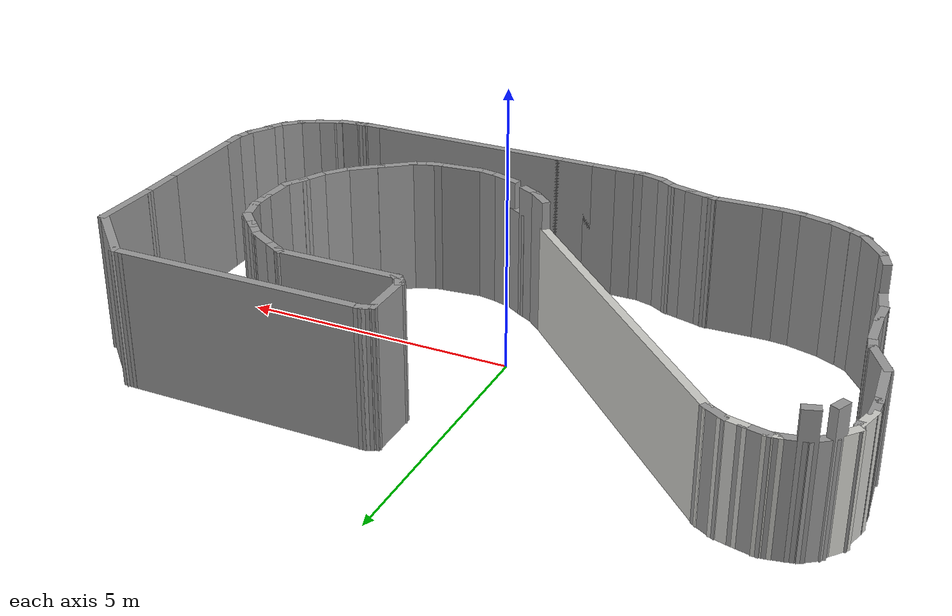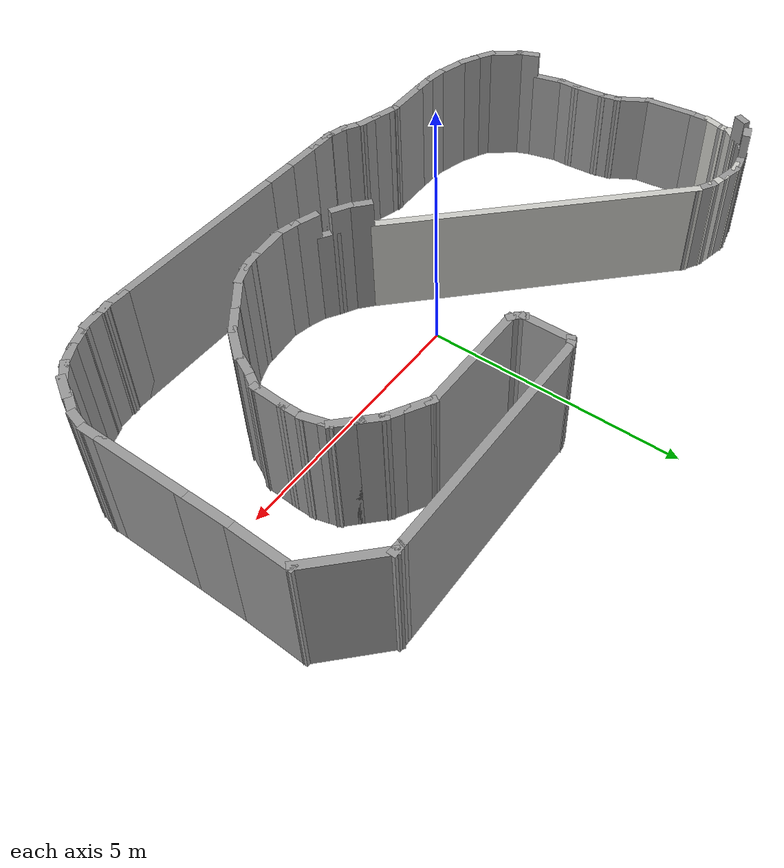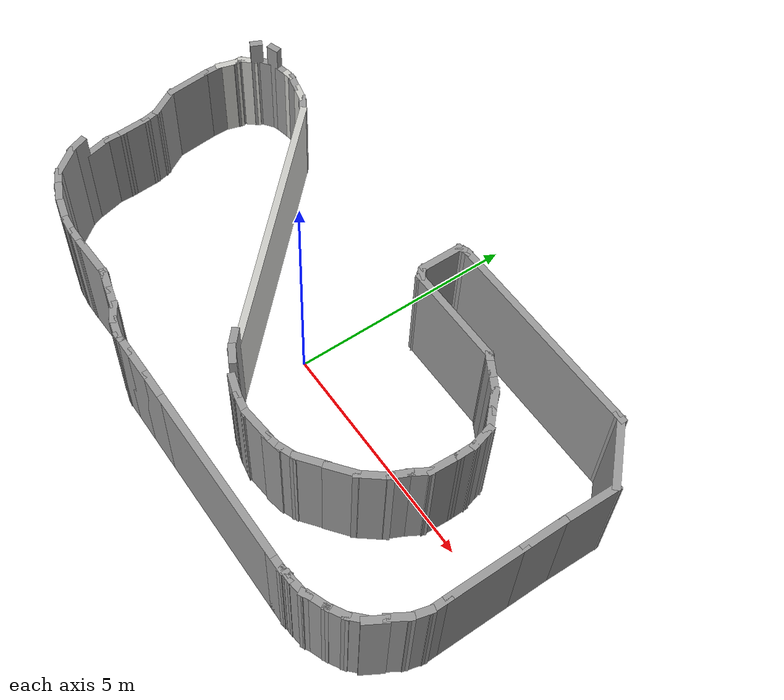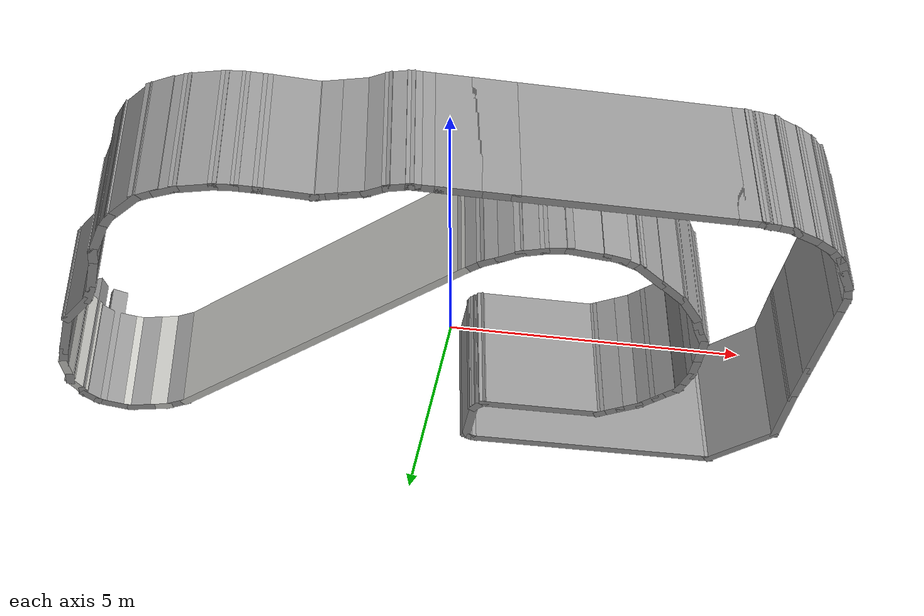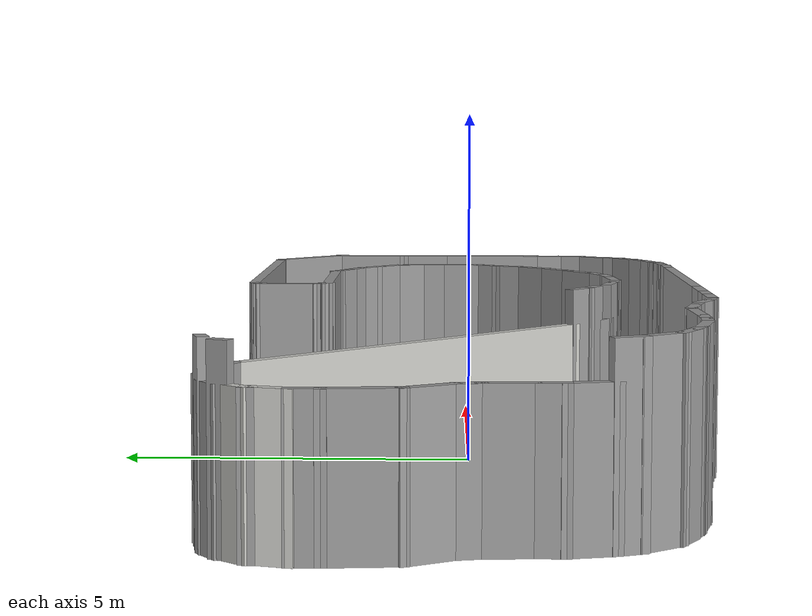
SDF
<?xml version='1.0'?>
<sdf version='1.7'>
  <model name='world_making.world'>
    <pose>-0.039169 -0.055881 0 0 -0 0</pose>
    <link name='Wall_0'>
      <collision name='Wall_0_Collision'>
        <geometry>
          <box>
            <size>1.06315 0.15 2</size>
          </box>
        </geometry>
        <pose>0 0 1 0 -0 0</pose>
      </collision>
      <visual name='Wall_0_Visual'>
        <pose>0 0 1 0 -0 0</pose>
        <geometry>
          <box>
            <size>1.06315 0.15 2</size>
          </box>
        </geometry>
        <material>
          <script>
            <uri>file://media/materials/scripts/gazebo.material</uri>
            <name>Gazebo/Grey</name>
          </script>
          <ambient>1 1 1 1</ambient>
        </material>
        <meta>
          <layer>0</layer>
        </meta>
      </visual>
      <pose>-6.37433 1.31238 0 0 -0 -1.47538</pose>
    </link>
    <link name='Wall_1'>
      <collision name='Wall_1_Collision'>
        <geometry>
          <box>
            <size>0.798482 0.15 2</size>
          </box>
        </geometry>
        <pose>0 0 1 0 -0 0</pose>
      </collision>
      <visual name='Wall_1_Visual'>
        <pose>0 0 1 0 -0 0</pose>
        <geometry>
          <box>
            <size>0.798482 0.15 2</size>
          </box>
        </geometry>
        <material>
          <script>
            <uri>file://media/materials/scripts/gazebo.material</uri>
            <name>Gazebo/Grey</name>
          </script>
          <ambient>1 1 1 1</ambient>
        </material>
        <meta>
          <layer>0</layer>
        </meta>
      </visual>
      <pose>-6.17733 0.577881 0 0 -0 -1.04228</pose>
    </link>
    <link name='Wall_10'>
      <collision name='Wall_10_Collision'>
        <geometry>
          <box>
            <size>0.451537 0.15 2.5</size>
          </box>
        </geometry>
        <pose>0 0 1.25 0 -0 0</pose>
      </collision>
      <visual name='Wall_10_Visual'>
        <pose>0 0 1.25 0 -0 0</pose>
        <geometry>
          <box>
            <size>0.451537 0.15 2.5</size>
          </box>
        </geometry>
        <material>
          <script>
            <uri>file://media/materials/scripts/gazebo.material</uri>
            <name>Gazebo/Grey</name>
          </script>
          <ambient>1 1 1 1</ambient>
        </material>
        <meta>
          <layer>0</layer>
        </meta>
      </visual>
      <pose>-4.80802 -2.57298 0 0 -0 -0.446701</pose>
    </link>
    <link name='Wall_11'>
      <collision name='Wall_11_Collision'>
        <geometry>
          <box>
            <size>0.75 0.15 2.5</size>
          </box>
        </geometry>
        <pose>0 0 1.25 0 -0 0</pose>
      </collision>
      <visual name='Wall_11_Visual'>
        <pose>0 0 1.25 0 -0 0</pose>
        <geometry>
          <box>
            <size>0.75 0.15 2.5</size>
          </box>
        </geometry>
        <material>
          <script>
            <uri>file://media/materials/scripts/gazebo.material</uri>
            <name>Gazebo/Grey</name>
          </script>
          <ambient>1 1 1 1</ambient>
        </material>
        <meta>
          <layer>0</layer>
        </meta>
      </visual>
      <pose>-4.38227 -2.71576 0 0 -0 -0.261799</pose>
    </link>
    <link name='Wall_12'>
      <collision name='Wall_12_Collision'>
        <geometry>
          <box>
            <size>0.471027 0.15 2.5</size>
          </box>
        </geometry>
        <pose>0 0 1.25 0 -0 0</pose>
      </collision>
      <visual name='Wall_12_Visual'>
        <pose>0 0 1.25 0 -0 0</pose>
        <geometry>
          <box>
            <size>0.471027 0.15 2.5</size>
          </box>
        </geometry>
        <material>
          <script>
            <uri>file://media/materials/scripts/gazebo.material</uri>
            <name>Gazebo/Grey</name>
          </script>
          <ambient>1 1 1 1</ambient>
        </material>
        <meta>
          <layer>0</layer>
        </meta>
      </visual>
      <pose>-3.9327 -2.80861 0 0 -0 -0.094893</pose>
    </link>
    <link name='Wall_13'>
      <collision name='Wall_13_Collision'>
        <geometry>
          <box>
            <size>0.5 0.15 2.5</size>
          </box>
        </geometry>
        <pose>0 0 1.25 0 -0 0</pose>
      </collision>
      <visual name='Wall_13_Visual'>
        <pose>0 0 1.25 0 -0 0</pose>
        <geometry>
          <box>
            <size>0.5 0.15 2.5</size>
          </box>
        </geometry>
        <material>
          <script>
            <uri>file://media/materials/scripts/gazebo.material</uri>
            <name>Gazebo/Grey</name>
          </script>
          <ambient>1 1 1 1</ambient>
        </material>
        <meta>
          <layer>0</layer>
        </meta>
      </visual>
      <pose>-3.5827 -2.82382 0 0 -0 0</pose>
    </link>
    <link name='Wall_14'>
      <collision name='Wall_14_Collision'>
        <geometry>
          <box>
            <size>1.03094 0.15 2.5</size>
          </box>
        </geometry>
        <pose>0 0 1.25 0 -0 0</pose>
      </collision>
      <visual name='Wall_14_Visual'>
        <pose>0 0 1.25 0 -0 0</pose>
        <geometry>
          <box>
            <size>1.03094 0.15 2.5</size>
          </box>
        </geometry>
        <material>
          <script>
            <uri>file://media/materials/scripts/gazebo.material</uri>
            <name>Gazebo/Grey</name>
          </script>
          <ambient>1 1 1 1</ambient>
        </material>
        <meta>
          <layer>0</layer>
        </meta>
      </visual>
      <pose>-2.9827 -2.80861 0 0 -0 0.034535</pose>
    </link>
    <link name='Wall_15'>
      <collision name='Wall_15_Collision'>
        <geometry>
          <box>
            <size>0.15 0.15 2.5</size>
          </box>
        </geometry>
        <pose>0 0 1.25 0 -0 0</pose>
      </collision>
      <visual name='Wall_15_Visual'>
        <pose>0 0 1.25 0 -0 0</pose>
        <geometry>
          <box>
            <size>0.15 0.15 2.5</size>
          </box>
        </geometry>
        <material>
          <script>
            <uri>file://media/materials/scripts/gazebo.material</uri>
            <name>Gazebo/Grey</name>
          </script>
          <ambient>1 1 1 1</ambient>
        </material>
        <meta>
          <layer>0</layer>
        </meta>
      </visual>
      <pose>-2.54249 -2.7934 0 0 -0 0</pose>
    </link>
    <link name='Wall_16'>
      <collision name='Wall_16_Collision'>
        <geometry>
          <box>
            <size>0.25 0.15 2.5</size>
          </box>
        </geometry>
        <pose>0 0 1.25 0 -0 0</pose>
      </collision>
      <visual name='Wall_16_Visual'>
        <pose>0 0 1.25 0 -0 0</pose>
        <geometry>
          <box>
            <size>0.25 0.15 2.5</size>
          </box>
        </geometry>
        <material>
          <script>
            <uri>file://media/materials/scripts/gazebo.material</uri>
            <name>Gazebo/Grey</name>
          </script>
          <ambient>1 1 1 1</ambient>
        </material>
        <meta>
          <layer>0</layer>
        </meta>
      </visual>
      <pose>-2.49419 -2.80634 0 0 -0 -0.261799</pose>
    </link>
    <link name='Wall_17'>
      <collision name='Wall_17_Collision'>
        <geometry>
          <box>
            <size>0.5 0.15 2.5</size>
          </box>
        </geometry>
        <pose>0 0 1.25 0 -0 0</pose>
      </collision>
      <visual name='Wall_17_Visual'>
        <pose>0 0 1.25 0 -0 0</pose>
        <geometry>
          <box>
            <size>0.5 0.15 2.5</size>
          </box>
        </geometry>
        <material>
          <script>
            <uri>file://media/materials/scripts/gazebo.material</uri>
            <name>Gazebo/Grey</name>
          </script>
          <ambient>1 1 1 1</ambient>
        </material>
        <meta>
          <layer>0</layer>
        </meta>
      </visual>
      <pose>-2.27686 -2.86458 0 0 -0 -0.261799</pose>
    </link>
    <link name='Wall_18'>
      <collision name='Wall_18_Collision'>
        <geometry>
          <box>
            <size>0.5 0.15 2.5</size>
          </box>
        </geometry>
        <pose>0 0 1.25 0 -0 0</pose>
      </collision>
      <visual name='Wall_18_Visual'>
        <pose>0 0 1.25 0 -0 0</pose>
        <geometry>
          <box>
            <size>0.5 0.15 2.5</size>
          </box>
        </geometry>
        <material>
          <script>
            <uri>file://media/materials/scripts/gazebo.material</uri>
            <name>Gazebo/Grey</name>
          </script>
          <ambient>1 1 1 1</ambient>
        </material>
        <meta>
          <layer>0</layer>
        </meta>
      </visual>
      <pose>-1.93878 -2.95517 0 0 -0 -0.261799</pose>
    </link>
    <link name='Wall_19'>
      <collision name='Wall_19_Collision'>
        <geometry>
          <box>
            <size>0.5 0.15 2.5</size>
          </box>
        </geometry>
        <pose>0 0 1.25 0 -0 0</pose>
      </collision>
      <visual name='Wall_19_Visual'>
        <pose>0 0 1.25 0 -0 0</pose>
        <geometry>
          <box>
            <size>0.5 0.15 2.5</size>
          </box>
        </geometry>
        <material>
          <script>
            <uri>file://media/materials/scripts/gazebo.material</uri>
            <name>Gazebo/Grey</name>
          </script>
          <ambient>1 1 1 1</ambient>
        </material>
        <meta>
          <layer>0</layer>
        </meta>
      </visual>
      <pose>-1.61819 -3.08796 0 0 -0 -0.523599</pose>
    </link>
    <link name='Wall_2'>
      <collision name='Wall_2_Collision'>
        <geometry>
          <box>
            <size>0.465854 0.15 2</size>
          </box>
        </geometry>
        <pose>0 0 1 0 -0 0</pose>
      </collision>
      <visual name='Wall_2_Visual'>
        <pose>0 0 1 0 -0 0</pose>
        <geometry>
          <box>
            <size>0.465854 0.15 2</size>
          </box>
        </geometry>
        <material>
          <script>
            <uri>file://media/materials/scripts/gazebo.material</uri>
            <name>Gazebo/Grey</name>
          </script>
          <ambient>1 1 1 1</ambient>
        </material>
        <meta>
          <layer>0</layer>
        </meta>
      </visual>
      <pose>-5.97883 0.143881 0 0 -0 -1.34732</pose>
    </link>
    <link name='Wall_20'>
      <collision name='Wall_20_Collision'>
        <geometry>
          <box>
            <size>0.5 0.15 2.5</size>
          </box>
        </geometry>
        <pose>0 0 1.25 0 -0 0</pose>
      </collision>
      <visual name='Wall_20_Visual'>
        <pose>0 0 1.25 0 -0 0</pose>
        <geometry>
          <box>
            <size>0.5 0.15 2.5</size>
          </box>
        </geometry>
        <material>
          <script>
            <uri>file://media/materials/scripts/gazebo.material</uri>
            <name>Gazebo/Grey</name>
          </script>
          <ambient>1 1 1 1</ambient>
        </material>
        <meta>
          <layer>0</layer>
        </meta>
      </visual>
      <pose>-1.2976 -3.22075 0 0 -0 -0.261799</pose>
    </link>
    <link name='Wall_21'>
      <collision name='Wall_21_Collision'>
        <geometry>
          <box>
            <size>0.25 0.15 2.5</size>
          </box>
        </geometry>
        <pose>0 0 1.25 0 -0 0</pose>
      </collision>
      <visual name='Wall_21_Visual'>
        <pose>0 0 1.25 0 -0 0</pose>
        <geometry>
          <box>
            <size>0.25 0.15 2.5</size>
          </box>
        </geometry>
        <material>
          <script>
            <uri>file://media/materials/scripts/gazebo.material</uri>
            <name>Gazebo/Grey</name>
          </script>
          <ambient>1 1 1 1</ambient>
        </material>
        <meta>
          <layer>0</layer>
        </meta>
      </visual>
      <pose>-1.07856 -3.26605 0 0 -0 0</pose>
    </link>
    <link name='Wall_22'>
      <collision name='Wall_22_Collision'>
        <geometry>
          <box>
            <size>0.5 0.15 2.5</size>
          </box>
        </geometry>
        <pose>0 0 1.25 0 -0 0</pose>
      </collision>
      <visual name='Wall_22_Visual'>
        <pose>0 0 1.25 0 -0 0</pose>
        <geometry>
          <box>
            <size>0.5 0.15 2.5</size>
          </box>
        </geometry>
        <material>
          <script>
            <uri>file://media/materials/scripts/gazebo.material</uri>
            <name>Gazebo/Grey</name>
          </script>
          <ambient>1 1 1 1</ambient>
        </material>
        <meta>
          <layer>0</layer>
        </meta>
      </visual>
      <pose>-0.853564 -3.26605 0 0 -0 0</pose>
    </link>
    <link name='Wall_23'>
      <collision name='Wall_23_Collision'>
        <geometry>
          <box>
            <size>0.75 0.15 2.5</size>
          </box>
        </geometry>
        <pose>0 0 1.25 0 -0 0</pose>
      </collision>
      <visual name='Wall_23_Visual'>
        <pose>0 0 1.25 0 -0 0</pose>
        <geometry>
          <box>
            <size>0.75 0.15 2.5</size>
          </box>
        </geometry>
        <material>
          <script>
            <uri>file://media/materials/scripts/gazebo.material</uri>
            <name>Gazebo/Grey</name>
          </script>
          <ambient>1 1 1 1</ambient>
        </material>
        <meta>
          <layer>0</layer>
        </meta>
      </visual>
      <pose>-0.378564 -3.26605 0 0 -0 0</pose>
    </link>
    <link name='Wall_24'>
      <collision name='Wall_24_Collision'>
        <geometry>
          <box>
            <size>0.75 0.15 2.5</size>
          </box>
        </geometry>
        <pose>0 0 1.25 0 -0 0</pose>
      </collision>
      <visual name='Wall_24_Visual'>
        <pose>0 0 1.25 0 -0 0</pose>
        <geometry>
          <box>
            <size>0.75 0.15 2.5</size>
          </box>
        </geometry>
        <material>
          <script>
            <uri>file://media/materials/scripts/gazebo.material</uri>
            <name>Gazebo/Grey</name>
          </script>
          <ambient>1 1 1 1</ambient>
        </material>
        <meta>
          <layer>0</layer>
        </meta>
      </visual>
      <pose>0.221436 -3.26605 0 0 -0 0</pose>
    </link>
    <link name='Wall_25'>
      <collision name='Wall_25_Collision'>
        <geometry>
          <box>
            <size>3.75 0.15 2.5</size>
          </box>
        </geometry>
        <pose>0 0 1.25 0 -0 0</pose>
      </collision>
      <visual name='Wall_25_Visual'>
        <pose>0 0 1.25 0 -0 0</pose>
        <geometry>
          <box>
            <size>3.75 0.15 2.5</size>
          </box>
        </geometry>
        <material>
          <script>
            <uri>file://media/materials/scripts/gazebo.material</uri>
            <name>Gazebo/Grey</name>
          </script>
          <ambient>1 1 1 1</ambient>
        </material>
        <meta>
          <layer>0</layer>
        </meta>
      </visual>
      <pose>2.32144 -3.26605 0 0 -0 0</pose>
    </link>
    <link name='Wall_26'>
      <collision name='Wall_26_Collision'>
        <geometry>
          <box>
            <size>0.5 0.15 2.5</size>
          </box>
        </geometry>
        <pose>0 0 1.25 0 -0 0</pose>
      </collision>
      <visual name='Wall_26_Visual'>
        <pose>0 0 1.25 0 -0 0</pose>
        <geometry>
          <box>
            <size>0.5 0.15 2.5</size>
          </box>
        </geometry>
        <material>
          <script>
            <uri>file://media/materials/scripts/gazebo.material</uri>
            <name>Gazebo/Grey</name>
          </script>
          <ambient>1 1 1 1</ambient>
        </material>
        <meta>
          <layer>0</layer>
        </meta>
      </visual>
      <pose>4.29644 -3.26605 0 0 -0 0</pose>
    </link>
    <link name='Wall_27'>
      <collision name='Wall_27_Collision'>
        <geometry>
          <box>
            <size>0.25 0.15 2.5</size>
          </box>
        </geometry>
        <pose>0 0 1.25 0 -0 0</pose>
      </collision>
      <visual name='Wall_27_Visual'>
        <pose>0 0 1.25 0 -0 0</pose>
        <geometry>
          <box>
            <size>0.25 0.15 2.5</size>
          </box>
        </geometry>
        <material>
          <script>
            <uri>file://media/materials/scripts/gazebo.material</uri>
            <name>Gazebo/Grey</name>
          </script>
          <ambient>1 1 1 1</ambient>
        </material>
        <meta>
          <layer>0</layer>
        </meta>
      </visual>
      <pose>4.51973 -3.25311 0 0 -0 0.261799</pose>
    </link>
    <link name='Wall_28'>
      <collision name='Wall_28_Collision'>
        <geometry>
          <box>
            <size>0.25 0.15 2.5</size>
          </box>
        </geometry>
        <pose>0 0 1.25 0 -0 0</pose>
      </collision>
      <visual name='Wall_28_Visual'>
        <pose>0 0 1.25 0 -0 0</pose>
        <geometry>
          <box>
            <size>0.25 0.15 2.5</size>
          </box>
        </geometry>
        <material>
          <script>
            <uri>file://media/materials/scripts/gazebo.material</uri>
            <name>Gazebo/Grey</name>
          </script>
          <ambient>1 1 1 1</ambient>
        </material>
        <meta>
          <layer>0</layer>
        </meta>
      </visual>
      <pose>4.61803 -3.24016 0 0 -0 0</pose>
    </link>
    <link name='Wall_29'>
      <collision name='Wall_29_Collision'>
        <geometry>
          <box>
            <size>0.462851 0.15 2.5</size>
          </box>
        </geometry>
        <pose>0 0 1.25 0 -0 0</pose>
      </collision>
      <visual name='Wall_29_Visual'>
        <pose>0 0 1.25 0 -0 0</pose>
        <geometry>
          <box>
            <size>0.462851 0.15 2.5</size>
          </box>
        </geometry>
        <material>
          <script>
            <uri>file://media/materials/scripts/gazebo.material</uri>
            <name>Gazebo/Grey</name>
          </script>
          <ambient>1 1 1 1</ambient>
        </material>
        <meta>
          <layer>0</layer>
        </meta>
      </visual>
      <pose>4.82319 -3.22033 0 0 -0 0.12716</pose>
    </link>
    <link name='Wall_3'>
      <collision name='Wall_3_Collision'>
        <geometry>
          <box>
            <size>0.751458 0.15 2</size>
          </box>
        </geometry>
        <pose>0 0 1 0 -0 0</pose>
      </collision>
      <visual name='Wall_3_Visual'>
        <pose>0 0 1 0 -0 0</pose>
        <geometry>
          <box>
            <size>0.751458 0.15 2</size>
          </box>
        </geometry>
        <material>
          <script>
            <uri>file://media/materials/scripts/gazebo.material</uri>
            <name>Gazebo/Grey</name>
          </script>
          <ambient>1 1 1 1</ambient>
        </material>
        <meta>
          <layer>0</layer>
        </meta>
      </visual>
      <pose>-5.92383 -0.310119 0 0 -0 -1.50423</pose>
    </link>
    <link name='Wall_30'>
      <collision name='Wall_30_Collision'>
        <geometry>
          <box>
            <size>0.25 0.15 2.5</size>
          </box>
        </geometry>
        <pose>0 0 1.25 0 -0 0</pose>
      </collision>
      <visual name='Wall_30_Visual'>
        <pose>0 0 1.25 0 -0 0</pose>
        <geometry>
          <box>
            <size>0.25 0.15 2.5</size>
          </box>
        </geometry>
        <material>
          <script>
            <uri>file://media/materials/scripts/gazebo.material</uri>
            <name>Gazebo/Grey</name>
          </script>
          <ambient>1 1 1 1</ambient>
        </material>
        <meta>
          <layer>0</layer>
        </meta>
      </visual>
      <pose>5.03488 -3.17549 0 0 -0 0.523599</pose>
    </link>
    <link name='Wall_31'>
      <collision name='Wall_31_Collision'>
        <geometry>
          <box>
            <size>0.518529 0.15 2.5</size>
          </box>
        </geometry>
        <pose>0 0 1.25 0 -0 0</pose>
      </collision>
      <visual name='Wall_31_Visual'>
        <pose>0 0 1.25 0 -0 0</pose>
        <geometry>
          <box>
            <size>0.518529 0.15 2.5</size>
          </box>
        </geometry>
        <material>
          <script>
            <uri>file://media/materials/scripts/gazebo.material</uri>
            <name>Gazebo/Grey</name>
          </script>
          <ambient>1 1 1 1</ambient>
        </material>
        <meta>
          <layer>0</layer>
        </meta>
      </visual>
      <pose>5.23635 -3.08283 0 0 -0 0.376</pose>
    </link>
    <link name='Wall_32'>
      <collision name='Wall_32_Collision'>
        <geometry>
          <box>
            <size>0.5 0.15 2.5</size>
          </box>
        </geometry>
        <pose>0 0 1.25 0 -0 0</pose>
      </collision>
      <visual name='Wall_32_Visual'>
        <pose>0 0 1.25 0 -0 0</pose>
        <geometry>
          <box>
            <size>0.5 0.15 2.5</size>
          </box>
        </geometry>
        <material>
          <script>
            <uri>file://media/materials/scripts/gazebo.material</uri>
            <name>Gazebo/Grey</name>
          </script>
          <ambient>1 1 1 1</ambient>
        </material>
        <meta>
          <layer>0</layer>
        </meta>
      </visual>
      <pose>5.55929 -2.92766 0 0 -0 0.523599</pose>
    </link>
    <link name='Wall_33'>
      <collision name='Wall_33_Collision'>
        <geometry>
          <box>
            <size>0.461814 0.15 2.5</size>
          </box>
        </geometry>
        <pose>0 0 1.25 0 -0 0</pose>
      </collision>
      <visual name='Wall_33_Visual'>
        <pose>0 0 1.25 0 -0 0</pose>
        <geometry>
          <box>
            <size>0.461814 0.15 2.5</size>
          </box>
        </geometry>
        <material>
          <script>
            <uri>file://media/materials/scripts/gazebo.material</uri>
            <name>Gazebo/Grey</name>
          </script>
          <ambient>1 1 1 1</ambient>
        </material>
        <meta>
          <layer>0</layer>
        </meta>
      </visual>
      <pose>5.82137 -2.7302 0 0 -0 0.782894</pose>
    </link>
    <link name='Wall_34'>
      <collision name='Wall_34_Collision'>
        <geometry>
          <box>
            <size>0.5 0.15 2.5</size>
          </box>
        </geometry>
        <pose>0 0 1.25 0 -0 0</pose>
      </collision>
      <visual name='Wall_34_Visual'>
        <pose>0 0 1.25 0 -0 0</pose>
        <geometry>
          <box>
            <size>0.5 0.15 2.5</size>
          </box>
        </geometry>
        <material>
          <script>
            <uri>file://media/materials/scripts/gazebo.material</uri>
            <name>Gazebo/Grey</name>
          </script>
          <ambient>1 1 1 1</ambient>
        </material>
        <meta>
          <layer>0</layer>
        </meta>
      </visual>
      <pose>6.03261 -2.49513 0 0 -0 1.0472</pose>
    </link>
    <link name='Wall_35'>
      <collision name='Wall_35_Collision'>
        <geometry>
          <box>
            <size>0.537195 0.15 2.5</size>
          </box>
        </geometry>
        <pose>0 0 1.25 0 -0 0</pose>
      </collision>
      <visual name='Wall_35_Visual'>
        <pose>0 0 1.25 0 -0 0</pose>
        <geometry>
          <box>
            <size>0.537195 0.15 2.5</size>
          </box>
        </geometry>
        <material>
          <script>
            <uri>file://media/materials/scripts/gazebo.material</uri>
            <name>Gazebo/Grey</name>
          </script>
          <ambient>1 1 1 1</ambient>
        </material>
        <meta>
          <layer>0</layer>
        </meta>
      </visual>
      <pose>6.20761 -2.15179 0 0 -0 1.02362</pose>
    </link>
    <link name='Wall_36'>
      <collision name='Wall_36_Collision'>
        <geometry>
          <box>
            <size>0.5 0.15 2.5</size>
          </box>
        </geometry>
        <pose>0 0 1.25 0 -0 0</pose>
      </collision>
      <visual name='Wall_36_Visual'>
        <pose>0 0 1.25 0 -0 0</pose>
        <geometry>
          <box>
            <size>0.5 0.15 2.5</size>
          </box>
        </geometry>
        <material>
          <script>
            <uri>file://media/materials/scripts/gazebo.material</uri>
            <name>Gazebo/Grey</name>
          </script>
          <ambient>1 1 1 1</ambient>
        </material>
        <meta>
          <layer>0</layer>
        </meta>
      </visual>
      <pose>6.35363 -1.81742 0 0 -0 1.309</pose>
    </link>
    <link name='Wall_37'>
      <collision name='Wall_37_Collision'>
        <geometry>
          <box>
            <size>0.5 0.15 2.5</size>
          </box>
        </geometry>
        <pose>0 0 1.25 0 -0 0</pose>
      </collision>
      <visual name='Wall_37_Visual'>
        <pose>0 0 1.25 0 -0 0</pose>
        <geometry>
          <box>
            <size>0.5 0.15 2.5</size>
          </box>
        </geometry>
        <material>
          <script>
            <uri>file://media/materials/scripts/gazebo.material</uri>
            <name>Gazebo/Grey</name>
          </script>
          <ambient>1 1 1 1</ambient>
        </material>
        <meta>
          <layer>0</layer>
        </meta>
      </visual>
      <pose>6.39892 -1.47338 0 0 -0 1.5708</pose>
    </link>
    <link name='Wall_38'>
      <collision name='Wall_38_Collision'>
        <geometry>
          <box>
            <size>1.75 0.15 2.5</size>
          </box>
        </geometry>
        <pose>0 0 1.25 0 -0 0</pose>
      </collision>
      <visual name='Wall_38_Visual'>
        <pose>0 0 1.25 0 -0 0</pose>
        <geometry>
          <box>
            <size>1.75 0.15 2.5</size>
          </box>
        </geometry>
        <material>
          <script>
            <uri>file://media/materials/scripts/gazebo.material</uri>
            <name>Gazebo/Grey</name>
          </script>
          <ambient>1 1 1 1</ambient>
        </material>
        <meta>
          <layer>0</layer>
        </meta>
      </visual>
      <pose>6.39892 -0.498385 0 0 -0 1.5708</pose>
    </link>
    <link name='Wall_39'>
      <collision name='Wall_39_Collision'>
        <geometry>
          <box>
            <size>1 0.15 2.5</size>
          </box>
        </geometry>
        <pose>0 0 1.25 0 -0 0</pose>
      </collision>
      <visual name='Wall_39_Visual'>
        <pose>0 0 1.25 0 -0 0</pose>
        <geometry>
          <box>
            <size>1 0.15 2.5</size>
          </box>
        </geometry>
        <material>
          <script>
            <uri>file://media/materials/scripts/gazebo.material</uri>
            <name>Gazebo/Grey</name>
          </script>
          <ambient>1 1 1 1</ambient>
        </material>
        <meta>
          <layer>0</layer>
        </meta>
      </visual>
      <pose>6.39892 0.726615 0 0 -0 1.5708</pose>
    </link>
    <link name='Wall_4'>
      <collision name='Wall_4_Collision'>
        <geometry>
          <box>
            <size>0.510127 0.15 2</size>
          </box>
        </geometry>
        <pose>0 0 1 0 -0 0</pose>
      </collision>
      <visual name='Wall_4_Visual'>
        <pose>0 0 1 0 -0 0</pose>
        <geometry>
          <box>
            <size>0.510127 0.15 2</size>
          </box>
        </geometry>
        <material>
          <script>
            <uri>file://media/materials/scripts/gazebo.material</uri>
            <name>Gazebo/Grey</name>
          </script>
          <ambient>1 1 1 1</ambient>
        </material>
        <meta>
          <layer>0</layer>
        </meta>
      </visual>
      <pose>-5.90383 -0.790119 0 0 -0 -1.5708</pose>
    </link>
    <link name='Wall_40'>
      <collision name='Wall_40_Collision'>
        <geometry>
          <box>
            <size>1.29573 0.15 2.5</size>
          </box>
        </geometry>
        <pose>0 0 1.25 0 -0 0</pose>
      </collision>
      <visual name='Wall_40_Visual'>
        <pose>0 0 1.25 0 -0 0</pose>
        <geometry>
          <box>
            <size>1.29573 0.15 2.5</size>
          </box>
        </geometry>
        <material>
          <script>
            <uri>file://media/materials/scripts/gazebo.material</uri>
            <name>Gazebo/Grey</name>
          </script>
          <ambient>1 1 1 1</ambient>
        </material>
        <meta>
          <layer>0</layer>
        </meta>
      </visual>
      <pose>6.41413 1.72443 0 0 -0 1.54425</pose>
    </link>
    <link name='Wall_41'>
      <collision name='Wall_41_Collision'>
        <geometry>
          <box>
            <size>1.5 0.15 2.5</size>
          </box>
        </geometry>
        <pose>0 0 1.25 0 -0 0</pose>
      </collision>
      <visual name='Wall_41_Visual'>
        <pose>0 0 1.25 0 -0 0</pose>
        <geometry>
          <box>
            <size>1.5 0.15 2.5</size>
          </box>
        </geometry>
        <material>
          <script>
            <uri>file://media/materials/scripts/gazebo.material</uri>
            <name>Gazebo/Grey</name>
          </script>
          <ambient>1 1 1 1</ambient>
        </material>
        <meta>
          <layer>0</layer>
        </meta>
      </visual>
      <pose>5.93684 2.77454 0 0 -0 2.35619</pose>
    </link>
    <link name='Wall_42'>
      <collision name='Wall_42_Collision'>
        <geometry>
          <box>
            <size>0.267102 0.15 2.5</size>
          </box>
        </geometry>
        <pose>0 0 1.25 0 -0 0</pose>
      </collision>
      <visual name='Wall_42_Visual'>
        <pose>0 0 1.25 0 -0 0</pose>
        <geometry>
          <box>
            <size>0.267102 0.15 2.5</size>
          </box>
        </geometry>
        <material>
          <script>
            <uri>file://media/materials/scripts/gazebo.material</uri>
            <name>Gazebo/Grey</name>
          </script>
          <ambient>1 1 1 1</ambient>
        </material>
        <meta>
          <layer>0</layer>
        </meta>
      </visual>
      <pose>5.41624 3.25402 0 0 -0 3.10423</pose>
    </link>
    <link name='Wall_43'>
      <collision name='Wall_43_Collision'>
        <geometry>
          <box>
            <size>4.5 0.15 2.5</size>
          </box>
        </geometry>
        <pose>0 0 1.25 0 -0 0</pose>
      </collision>
      <visual name='Wall_43_Visual'>
        <pose>0 0 1.25 0 -0 0</pose>
        <geometry>
          <box>
            <size>4.5 0.15 2.5</size>
          </box>
        </geometry>
        <material>
          <script>
            <uri>file://media/materials/scripts/gazebo.material</uri>
            <name>Gazebo/Grey</name>
          </script>
          <ambient>1 1 1 1</ambient>
        </material>
        <meta>
          <layer>0</layer>
        </meta>
      </visual>
      <pose>3.18273 3.25621 0 0 -0 3.14159</pose>
    </link>
    <link name='Wall_44'>
      <collision name='Wall_44_Collision'>
        <geometry>
          <box>
            <size>0.25 0.15 2.5</size>
          </box>
        </geometry>
        <pose>0 0 1.25 0 -0 0</pose>
      </collision>
      <visual name='Wall_44_Visual'>
        <pose>0 0 1.25 0 -0 0</pose>
        <geometry>
          <box>
            <size>0.25 0.15 2.5</size>
          </box>
        </geometry>
        <material>
          <script>
            <uri>file://media/materials/scripts/gazebo.material</uri>
            <name>Gazebo/Grey</name>
          </script>
          <ambient>1 1 1 1</ambient>
        </material>
        <meta>
          <layer>0</layer>
        </meta>
      </visual>
      <pose>0.95943 3.24327 0 0 -0 -2.87979</pose>
    </link>
    <link name='Wall_45'>
      <collision name='Wall_45_Collision'>
        <geometry>
          <box>
            <size>0.25 0.15 2.5</size>
          </box>
        </geometry>
        <pose>0 0 1.25 0 -0 0</pose>
      </collision>
      <visual name='Wall_45_Visual'>
        <pose>0 0 1.25 0 -0 0</pose>
        <geometry>
          <box>
            <size>0.25 0.15 2.5</size>
          </box>
        </geometry>
        <material>
          <script>
            <uri>file://media/materials/scripts/gazebo.material</uri>
            <name>Gazebo/Grey</name>
          </script>
          <ambient>1 1 1 1</ambient>
        </material>
        <meta>
          <layer>0</layer>
        </meta>
      </visual>
      <pose>0.867832 3.20533 0 0 -0 -2.61799</pose>
    </link>
    <link name='Wall_46'>
      <collision name='Wall_46_Collision'>
        <geometry>
          <box>
            <size>1 0.15 2.5</size>
          </box>
        </geometry>
        <pose>0 0 1.25 0 -0 0</pose>
      </collision>
      <visual name='Wall_46_Visual'>
        <pose>0 0 1.25 0 -0 0</pose>
        <geometry>
          <box>
            <size>1 0.15 2.5</size>
          </box>
        </geometry>
        <material>
          <script>
            <uri>file://media/materials/scripts/gazebo.material</uri>
            <name>Gazebo/Grey</name>
          </script>
          <ambient>1 1 1 1</ambient>
        </material>
        <meta>
          <layer>0</layer>
        </meta>
      </visual>
      <pose>0.824531 2.75533 0 0 -0 -1.5708</pose>
    </link>
    <link name='Wall_47'>
      <collision name='Wall_47_Collision'>
        <geometry>
          <box>
            <size>0.25 0.15 2.5</size>
          </box>
        </geometry>
        <pose>0 0 1.25 0 -0 0</pose>
      </collision>
      <visual name='Wall_47_Visual'>
        <pose>0 0 1.25 0 -0 0</pose>
        <geometry>
          <box>
            <size>0.25 0.15 2.5</size>
          </box>
        </geometry>
        <material>
          <script>
            <uri>file://media/materials/scripts/gazebo.material</uri>
            <name>Gazebo/Grey</name>
          </script>
          <ambient>1 1 1 1</ambient>
        </material>
        <meta>
          <layer>0</layer>
        </meta>
      </visual>
      <pose>0.849531 2.28703 0 0 -0 -1.0472</pose>
    </link>
    <link name='Wall_48'>
      <collision name='Wall_48_Collision'>
        <geometry>
          <box>
            <size>0.282699 0.15 2.5</size>
          </box>
        </geometry>
        <pose>0 0 1.25 0 -0 0</pose>
      </collision>
      <visual name='Wall_48_Visual'>
        <pose>0 0 1.25 0 -0 0</pose>
        <geometry>
          <box>
            <size>0.282699 0.15 2.5</size>
          </box>
        </geometry>
        <material>
          <script>
            <uri>file://media/materials/scripts/gazebo.material</uri>
            <name>Gazebo/Grey</name>
          </script>
          <ambient>1 1 1 1</ambient>
        </material>
        <meta>
          <layer>0</layer>
        </meta>
      </visual>
      <pose>0.925095 2.20077 0 0 -0 -0.704267</pose>
    </link>
    <link name='Wall_49'>
      <collision name='Wall_49_Collision'>
        <geometry>
          <box>
            <size>2.25 0.15 2.5</size>
          </box>
        </geometry>
        <pose>0 0 1.25 0 -0 0</pose>
      </collision>
      <visual name='Wall_49_Visual'>
        <pose>0 0 1.25 0 -0 0</pose>
        <geometry>
          <box>
            <size>2.25 0.15 2.5</size>
          </box>
        </geometry>
        <material>
          <script>
            <uri>file://media/materials/scripts/gazebo.material</uri>
            <name>Gazebo/Grey</name>
          </script>
          <ambient>1 1 1 1</ambient>
        </material>
        <meta>
          <layer>0</layer>
        </meta>
      </visual>
      <pose>2.01045 2.15781 0 0 -0 0</pose>
    </link>
    <link name='Wall_5'>
      <collision name='Wall_5_Collision'>
        <geometry>
          <box>
            <size>0.746835 0.15 2</size>
          </box>
        </geometry>
        <pose>0 0 1 0 -0 0</pose>
      </collision>
      <visual name='Wall_5_Visual'>
        <pose>0 0 1 0 -0 0</pose>
        <geometry>
          <box>
            <size>0.746835 0.15 2</size>
          </box>
        </geometry>
        <material>
          <script>
            <uri>file://media/materials/scripts/gazebo.material</uri>
            <name>Gazebo/Grey</name>
          </script>
          <ambient>1 1 1 1</ambient>
        </material>
        <meta>
          <layer>0</layer>
        </meta>
      </visual>
      <pose>-5.83283 -1.26012 0 0 -0 -1.33069</pose>
    </link>
    <link name='Wall_50'>
      <collision name='Wall_50_Collision'>
        <geometry>
          <box>
            <size>0.216085 0.15 2.5</size>
          </box>
        </geometry>
        <pose>0 0 1.25 0 -0 0</pose>
      </collision>
      <visual name='Wall_50_Visual'>
        <pose>0 0 1.25 0 -0 0</pose>
        <geometry>
          <box>
            <size>0.216085 0.15 2.5</size>
          </box>
        </geometry>
        <material>
          <script>
            <uri>file://media/materials/scripts/gazebo.material</uri>
            <name>Gazebo/Grey</name>
          </script>
          <ambient>1 1 1 1</ambient>
        </material>
        <meta>
          <layer>0</layer>
        </meta>
      </visual>
      <pose>3.10375 2.14041 0 0 -0 -0.554437</pose>
    </link>
    <link name='Wall_51'>
      <collision name='Wall_51_Collision'>
        <geometry>
          <box>
            <size>0.5 0.15 2.5</size>
          </box>
        </geometry>
        <pose>0 0 1.25 0 -0 0</pose>
      </collision>
      <visual name='Wall_51_Visual'>
        <pose>0 0 1.25 0 -0 0</pose>
        <geometry>
          <box>
            <size>0.5 0.15 2.5</size>
          </box>
        </geometry>
        <material>
          <script>
            <uri>file://media/materials/scripts/gazebo.material</uri>
            <name>Gazebo/Grey</name>
          </script>
          <ambient>1 1 1 1</ambient>
        </material>
        <meta>
          <layer>0</layer>
        </meta>
      </visual>
      <pose>3.2834 2.03551 0 0 -0 -0.523599</pose>
    </link>
    <link name='Wall_52'>
      <collision name='Wall_52_Collision'>
        <geometry>
          <box>
            <size>0.5 0.15 2.5</size>
          </box>
        </geometry>
        <pose>0 0 1.25 0 -0 0</pose>
      </collision>
      <visual name='Wall_52_Visual'>
        <pose>0 0 1.25 0 -0 0</pose>
        <geometry>
          <box>
            <size>0.5 0.15 2.5</size>
          </box>
        </geometry>
        <material>
          <script>
            <uri>file://media/materials/scripts/gazebo.material</uri>
            <name>Gazebo/Grey</name>
          </script>
          <ambient>1 1 1 1</ambient>
        </material>
        <meta>
          <layer>0</layer>
        </meta>
      </visual>
      <pose>3.58651 1.86051 0 0 -0 -0.523599</pose>
    </link>
    <link name='Wall_53'>
      <collision name='Wall_53_Collision'>
        <geometry>
          <box>
            <size>0.5 0.15 2.5</size>
          </box>
        </geometry>
        <pose>0 0 1.25 0 -0 0</pose>
      </collision>
      <visual name='Wall_53_Visual'>
        <pose>0 0 1.25 0 -0 0</pose>
        <geometry>
          <box>
            <size>0.5 0.15 2.5</size>
          </box>
        </geometry>
        <material>
          <script>
            <uri>file://media/materials/scripts/gazebo.material</uri>
            <name>Gazebo/Grey</name>
          </script>
          <ambient>1 1 1 1</ambient>
        </material>
        <meta>
          <layer>0</layer>
        </meta>
      </visual>
      <pose>3.86181 1.64927 0 0 -0 -0.785398</pose>
    </link>
    <link name='Wall_54'>
      <collision name='Wall_54_Collision'>
        <geometry>
          <box>
            <size>0.25 0.15 2.5</size>
          </box>
        </geometry>
        <pose>0 0 1.25 0 -0 0</pose>
      </collision>
      <visual name='Wall_54_Visual'>
        <pose>0 0 1.25 0 -0 0</pose>
        <geometry>
          <box>
            <size>0.25 0.15 2.5</size>
          </box>
        </geometry>
        <material>
          <script>
            <uri>file://media/materials/scripts/gazebo.material</uri>
            <name>Gazebo/Grey</name>
          </script>
          <ambient>1 1 1 1</ambient>
        </material>
        <meta>
          <layer>0</layer>
        </meta>
      </visual>
      <pose>4.0209 1.49017 0 0 -0 -0.785398</pose>
    </link>
    <link name='Wall_55'>
      <collision name='Wall_55_Collision'>
        <geometry>
          <box>
            <size>0.5 0.15 2.5</size>
          </box>
        </geometry>
        <pose>0 0 1.25 0 -0 0</pose>
      </collision>
      <visual name='Wall_55_Visual'>
        <pose>0 0 1.25 0 -0 0</pose>
        <geometry>
          <box>
            <size>0.5 0.15 2.5</size>
          </box>
        </geometry>
        <material>
          <script>
            <uri>file://media/materials/scripts/gazebo.material</uri>
            <name>Gazebo/Grey</name>
          </script>
          <ambient>1 1 1 1</ambient>
        </material>
        <meta>
          <layer>0</layer>
        </meta>
      </visual>
      <pose>4.18 1.33107 0 0 -0 -0.785398</pose>
    </link>
    <link name='Wall_56'>
      <collision name='Wall_56_Collision'>
        <geometry>
          <box>
            <size>0.25 0.15 2.5</size>
          </box>
        </geometry>
        <pose>0 0 1.25 0 -0 0</pose>
      </collision>
      <visual name='Wall_56_Visual'>
        <pose>0 0 1.25 0 -0 0</pose>
        <geometry>
          <box>
            <size>0.25 0.15 2.5</size>
          </box>
        </geometry>
        <material>
          <script>
            <uri>file://media/materials/scripts/gazebo.material</uri>
            <name>Gazebo/Grey</name>
          </script>
          <ambient>1 1 1 1</ambient>
        </material>
        <meta>
          <layer>0</layer>
        </meta>
      </visual>
      <pose>4.31669 1.15903 0 0 -0 -1.309</pose>
    </link>
    <link name='Wall_57'>
      <collision name='Wall_57_Collision'>
        <geometry>
          <box>
            <size>0.5 0.15 2.5</size>
          </box>
        </geometry>
        <pose>0 0 1.25 0 -0 0</pose>
      </collision>
      <visual name='Wall_57_Visual'>
        <pose>0 0 1.25 0 -0 0</pose>
        <geometry>
          <box>
            <size>0.5 0.15 2.5</size>
          </box>
        </geometry>
        <material>
          <script>
            <uri>file://media/materials/scripts/gazebo.material</uri>
            <name>Gazebo/Grey</name>
          </script>
          <ambient>1 1 1 1</ambient>
        </material>
        <meta>
          <layer>0</layer>
        </meta>
      </visual>
      <pose>4.37492 0.941699 0 0 -0 -1.309</pose>
    </link>
    <link name='Wall_58'>
      <collision name='Wall_58_Collision'>
        <geometry>
          <box>
            <size>0.5 0.15 2.5</size>
          </box>
        </geometry>
        <pose>0 0 1.25 0 -0 0</pose>
      </collision>
      <visual name='Wall_58_Visual'>
        <pose>0 0 1.25 0 -0 0</pose>
        <geometry>
          <box>
            <size>0.5 0.15 2.5</size>
          </box>
        </geometry>
        <material>
          <script>
            <uri>file://media/materials/scripts/gazebo.material</uri>
            <name>Gazebo/Grey</name>
          </script>
          <ambient>1 1 1 1</ambient>
        </material>
        <meta>
          <layer>0</layer>
        </meta>
      </visual>
      <pose>4.42022 0.597662 0 0 -0 -1.5708</pose>
    </link>
    <link name='Wall_59'>
      <collision name='Wall_59_Collision'>
        <geometry>
          <box>
            <size>0.736568 0.15 2.5</size>
          </box>
        </geometry>
        <pose>0 0 1.25 0 -0 0</pose>
      </collision>
      <visual name='Wall_59_Visual'>
        <pose>0 0 1.25 0 -0 0</pose>
        <geometry>
          <box>
            <size>0.736568 0.15 2.5</size>
          </box>
        </geometry>
        <material>
          <script>
            <uri>file://media/materials/scripts/gazebo.material</uri>
            <name>Gazebo/Grey</name>
          </script>
          <ambient>1 1 1 1</ambient>
        </material>
        <meta>
          <layer>0</layer>
        </meta>
      </visual>
      <pose>4.40501 0.130267 0 0 -0 -1.62276</pose>
    </link>
    <link name='Wall_60'>
      <collision name='Wall_60_Collision'>
        <geometry>
          <box>
            <size>0.5 0.15 2.5</size>
          </box>
        </geometry>
        <pose>0 0 1.25 0 -0 0</pose>
      </collision>
      <visual name='Wall_60_Visual'>
        <pose>0 0 1.25 0 -0 0</pose>
        <geometry>
          <box>
            <size>0.5 0.15 2.5</size>
          </box>
        </geometry>
        <material>
          <script>
            <uri>file://media/materials/scripts/gazebo.material</uri>
            <name>Gazebo/Grey</name>
          </script>
          <ambient>1 1 1 1</ambient>
        </material>
        <meta>
          <layer>0</layer>
        </meta>
      </visual>
      <pose>4.3023 -0.313683 0 0 -0 -2.0944</pose>
    </link>
    <link name='Wall_61'>
      <collision name='Wall_61_Collision'>
        <geometry>
          <box>
            <size>0.50661 0.15 2.5</size>
          </box>
        </geometry>
        <pose>0 0 1.25 0 -0 0</pose>
      </collision>
      <visual name='Wall_61_Visual'>
        <pose>0 0 1.25 0 -0 0</pose>
        <geometry>
          <box>
            <size>0.50661 0.15 2.5</size>
          </box>
        </geometry>
        <material>
          <script>
            <uri>file://media/materials/scripts/gazebo.material</uri>
            <name>Gazebo/Grey</name>
          </script>
          <ambient>1 1 1 1</ambient>
        </material>
        <meta>
          <layer>0</layer>
        </meta>
      </visual>
      <pose>4.13909 -0.626671 0 0 -0 -2.00933</pose>
    </link>
    <link name='Wall_62'>
      <collision name='Wall_62_Collision'>
        <geometry>
          <box>
            <size>0.733679 0.15 2.5</size>
          </box>
        </geometry>
        <pose>0 0 1.25 0 -0 0</pose>
      </collision>
      <visual name='Wall_62_Visual'>
        <pose>0 0 1.25 0 -0 0</pose>
        <geometry>
          <box>
            <size>0.733679 0.15 2.5</size>
          </box>
        </geometry>
        <material>
          <script>
            <uri>file://media/materials/scripts/gazebo.material</uri>
            <name>Gazebo/Grey</name>
          </script>
          <ambient>1 1 1 1</ambient>
        </material>
        <meta>
          <layer>0</layer>
        </meta>
      </visual>
      <pose>3.89817 -1.01749 0 0 -0 -2.23726</pose>
    </link>
    <link name='Wall_63'>
      <collision name='Wall_63_Collision'>
        <geometry>
          <box>
            <size>0.679029 0.15 2.5</size>
          </box>
        </geometry>
        <pose>0 0 1.25 0 -0 0</pose>
      </collision>
      <visual name='Wall_63_Visual'>
        <pose>0 0 1.25 0 -0 0</pose>
        <geometry>
          <box>
            <size>0.679029 0.15 2.5</size>
          </box>
        </geometry>
        <material>
          <script>
            <uri>file://media/materials/scripts/gazebo.material</uri>
            <name>Gazebo/Grey</name>
          </script>
          <ambient>1 1 1 1</ambient>
        </material>
        <meta>
          <layer>0</layer>
        </meta>
      </visual>
      <pose>3.49596 -1.41209 0 0 -0 -2.46701</pose>
    </link>
    <link name='Wall_64'>
      <collision name='Wall_64_Collision'>
        <geometry>
          <box>
            <size>0.733679 0.15 2.5</size>
          </box>
        </geometry>
        <pose>0 0 1.25 0 -0 0</pose>
      </collision>
      <visual name='Wall_64_Visual'>
        <pose>0 0 1.25 0 -0 0</pose>
        <geometry>
          <box>
            <size>0.733679 0.15 2.5</size>
          </box>
        </geometry>
        <material>
          <script>
            <uri>file://media/materials/scripts/gazebo.material</uri>
            <name>Gazebo/Grey</name>
          </script>
          <ambient>1 1 1 1</ambient>
        </material>
        <meta>
          <layer>0</layer>
        </meta>
      </visual>
      <pose>3.04479 -1.75772 0 0 -0 -2.47513</pose>
    </link>
    <link name='Wall_65'>
      <collision name='Wall_65_Collision'>
        <geometry>
          <box>
            <size>0.45971 0.15 2.5</size>
          </box>
        </geometry>
        <pose>0 0 1.25 0 -0 0</pose>
      </collision>
      <visual name='Wall_65_Visual'>
        <pose>0 0 1.25 0 -0 0</pose>
        <geometry>
          <box>
            <size>0.45971 0.15 2.5</size>
          </box>
        </geometry>
        <material>
          <script>
            <uri>file://media/materials/scripts/gazebo.material</uri>
            <name>Gazebo/Grey</name>
          </script>
          <ambient>1 1 1 1</ambient>
        </material>
        <meta>
          <layer>0</layer>
        </meta>
      </visual>
      <pose>2.67145 -1.99522 0 0 -0 -2.76407</pose>
    </link>
    <link name='Wall_66'>
      <collision name='Wall_66_Collision'>
        <geometry>
          <box>
            <size>0.460394 0.15 2.5</size>
          </box>
        </geometry>
        <pose>0 0 1.25 0 -0 0</pose>
      </collision>
      <visual name='Wall_66_Visual'>
        <pose>0 0 1.25 0 -0 0</pose>
        <geometry>
          <box>
            <size>0.460394 0.15 2.5</size>
          </box>
        </geometry>
        <material>
          <script>
            <uri>file://media/materials/scripts/gazebo.material</uri>
            <name>Gazebo/Grey</name>
          </script>
          <ambient>1 1 1 1</ambient>
        </material>
        <meta>
          <layer>0</layer>
        </meta>
      </visual>
      <pose>2.37531 -2.09793 0 0 -0 -2.94432</pose>
    </link>
    <link name='Wall_67'>
      <collision name='Wall_67_Collision'>
        <geometry>
          <box>
            <size>0.768209 0.15 2.5</size>
          </box>
        </geometry>
        <pose>0 0 1.25 0 -0 0</pose>
      </collision>
      <visual name='Wall_67_Visual'>
        <pose>0 0 1.25 0 -0 0</pose>
        <geometry>
          <box>
            <size>0.768209 0.15 2.5</size>
          </box>
        </geometry>
        <material>
          <script>
            <uri>file://media/materials/scripts/gazebo.material</uri>
            <name>Gazebo/Grey</name>
          </script>
          <ambient>1 1 1 1</ambient>
        </material>
        <meta>
          <layer>0</layer>
        </meta>
      </visual>
      <pose>1.91552 -2.14355 0 0 -0 -3.04303</pose>
    </link>
    <link name='Wall_68'>
      <collision name='Wall_68_Collision'>
        <geometry>
          <box>
            <size>0.552868 0.15 2.5</size>
          </box>
        </geometry>
        <pose>0 0 1.25 0 -0 0</pose>
      </collision>
      <visual name='Wall_68_Visual'>
        <pose>0 0 1.25 0 -0 0</pose>
        <geometry>
          <box>
            <size>0.552868 0.15 2.5</size>
          </box>
        </geometry>
        <material>
          <script>
            <uri>file://media/materials/scripts/gazebo.material</uri>
            <name>Gazebo/Grey</name>
          </script>
          <ambient>1 1 1 1</ambient>
        </material>
        <meta>
          <layer>0</layer>
        </meta>
      </visual>
      <pose>1.4101 -2.15116 0 0 -0 2.9517</pose>
    </link>
    <link name='Wall_69'>
      <collision name='Wall_69_Collision'>
        <geometry>
          <box>
            <size>0.552503 0.15 2.5</size>
          </box>
        </geometry>
        <pose>0 0 1.25 0 -0 0</pose>
      </collision>
      <visual name='Wall_69_Visual'>
        <pose>0 0 1.25 0 -0 0</pose>
        <geometry>
          <box>
            <size>0.552503 0.15 2.5</size>
          </box>
        </geometry>
        <material>
          <script>
            <uri>file://media/materials/scripts/gazebo.material</uri>
            <name>Gazebo/Grey</name>
          </script>
          <ambient>1 1 1 1</ambient>
        </material>
        <meta>
          <layer>0</layer>
        </meta>
      </visual>
      <pose>1.02042 -2.05242 0 0 -0 2.83512</pose>
    </link>
    <link name='Wall_7'>
      <collision name='Wall_7_Collision'>
        <geometry>
          <box>
            <size>0.476503 0.15 2.5</size>
          </box>
        </geometry>
        <pose>0 0 1.25 0 -0 0</pose>
      </collision>
      <visual name='Wall_7_Visual'>
        <pose>0 0 1.25 0 -0 0</pose>
        <geometry>
          <box>
            <size>0.476503 0.15 2.5</size>
          </box>
        </geometry>
        <material>
          <script>
            <uri>file://media/materials/scripts/gazebo.material</uri>
            <name>Gazebo/Grey</name>
          </script>
          <ambient>1 1 1 1</ambient>
        </material>
        <meta>
          <layer>0</layer>
        </meta>
      </visual>
      <pose>-5.70075 -1.70152 0 0 -0 -1.18734</pose>
    </link>
    <link name='Wall_70'>
      <collision name='Wall_70_Collision'>
        <geometry>
          <box>
            <size>0.507755 0.15 2</size>
          </box>
        </geometry>
        <pose>0 0 1 0 -0 0</pose>
      </collision>
      <visual name='Wall_70_Visual'>
        <pose>0 0 1 0 -0 0</pose>
        <geometry>
          <box>
            <size>0.507755 0.15 2</size>
          </box>
        </geometry>
        <material>
          <script>
            <uri>file://media/materials/scripts/gazebo.material</uri>
            <name>Gazebo/Grey</name>
          </script>
          <ambient>1 1 1 1</ambient>
        </material>
        <meta>
          <layer>0</layer>
        </meta>
      </visual>
      <pose>0.692251 -1.8966 0 0 -0 2.58102</pose>
    </link>
    <link name='Wall_71'>
      <collision name='Wall_71_Collision'>
        <geometry>
          <box>
            <size>0.445142 0.15 2.5</size>
          </box>
        </geometry>
        <pose>0 0 1.25 0 -0 0</pose>
      </collision>
      <visual name='Wall_71_Visual'>
        <pose>0 0 1.25 0 -0 0</pose>
        <geometry>
          <box>
            <size>0.445142 0.15 2.5</size>
          </box>
        </geometry>
        <material>
          <script>
            <uri>file://media/materials/scripts/gazebo.material</uri>
            <name>Gazebo/Grey</name>
          </script>
          <ambient>1 1 1 1</ambient>
        </material>
        <meta>
          <layer>0</layer>
        </meta>
      </visual>
      <pose>0.411979 -1.72942 0 0 -0 2.63132</pose>
    </link>
    <link name='Wall_72'>
      <collision name='Wall_72_Collision'>
        <geometry>
          <box>
            <size>0.50066 0.15 2.5</size>
          </box>
        </geometry>
        <pose>0 0 1.25 0 -0 0</pose>
      </collision>
      <visual name='Wall_72_Visual'>
        <pose>0 0 1.25 0 -0 0</pose>
        <geometry>
          <box>
            <size>0.50066 0.15 2.5</size>
          </box>
        </geometry>
        <material>
          <script>
            <uri>file://media/materials/scripts/gazebo.material</uri>
            <name>Gazebo/Grey</name>
          </script>
          <ambient>1 1 1 1</ambient>
        </material>
        <meta>
          <layer>0</layer>
        </meta>
      </visual>
      <pose>0.151688 -1.54123 0 0 -0 2.41834</pose>
    </link>
    <link name='Wall_73'>
      <collision name='Wall_73_Collision'>
        <geometry>
          <box>
            <size>6.28235 0.15 2</size>
          </box>
        </geometry>
        <pose>0 0 1 0 -0 0</pose>
      </collision>
      <visual name='Wall_73_Visual'>
        <pose>0 0 1 0 -0 0</pose>
        <geometry>
          <box>
            <size>6.28235 0.15 2</size>
          </box>
        </geometry>
        <material>
          <script>
            <uri>file://media/materials/scripts/gazebo.material</uri>
            <name>Gazebo/CeilingTiled</name>
          </script>
          <ambient>1 1 1 1</ambient>
        </material>
        <meta>
          <layer>0</layer>
        </meta>
      </visual>
      <pose>-2.13633 0.754381 0 0 -0 2.35089</pose>
    </link>
    <link name='Wall_74'>
      <collision name='Wall_74_Collision'>
        <geometry>
          <box>
            <size>0.499906 0.15 2</size>
          </box>
        </geometry>
        <pose>0 0 1 0 -0 0</pose>
      </collision>
      <visual name='Wall_74_Visual'>
        <pose>0 0 1 0 -0 0</pose>
        <geometry>
          <box>
            <size>0.499906 0.15 2</size>
          </box>
        </geometry>
        <material>
          <script>
            <uri>file://media/materials/scripts/gazebo.material</uri>
            <name>Gazebo/Grey</name>
          </script>
          <ambient>1 1 1 1</ambient>
        </material>
        <meta>
          <layer>0</layer>
        </meta>
      </visual>
      <pose>-4.44433 3.02138 0 0 -0 2.61784</pose>
    </link>
    <link name='Wall_75'>
      <collision name='Wall_75_Collision'>
        <geometry>
          <box>
            <size>0.466877 0.15 2</size>
          </box>
        </geometry>
        <pose>0 0 1 0 -0 0</pose>
      </collision>
      <visual name='Wall_75_Visual'>
        <pose>0 0 1 0 -0 0</pose>
        <geometry>
          <box>
            <size>0.466877 0.15 2</size>
          </box>
        </geometry>
        <material>
          <script>
            <uri>file://media/materials/scripts/gazebo.material</uri>
            <name>Gazebo/CeilingTiled</name>
          </script>
          <ambient>1 1 1 1</ambient>
        </material>
        <meta>
          <layer>0</layer>
        </meta>
      </visual>
      <pose>-4.74983 3.14638 0 0 -0 2.90273</pose>
    </link>
    <link name='Wall_76'>
      <collision name='Wall_76_Collision'>
        <geometry>
          <box>
            <size>0.511222 0.15 2</size>
          </box>
        </geometry>
        <pose>0 0 1 0 -0 0</pose>
      </collision>
      <visual name='Wall_76_Visual'>
        <pose>0 0 1 0 -0 0</pose>
        <geometry>
          <box>
            <size>0.511222 0.15 2</size>
          </box>
        </geometry>
        <material>
          <script>
            <uri>file://media/materials/scripts/gazebo.material</uri>
            <name>Gazebo/Grey</name>
          </script>
          <ambient>1 1 1 1</ambient>
        </material>
        <meta>
          <layer>0</layer>
        </meta>
      </visual>
      <pose>-5.08033 3.22188 0 0 -0 2.92953</pose>
    </link>
    <link name='Wall_77'>
      <collision name='Wall_77_Collision'>
        <geometry>
          <box>
            <size>0.296418 0.15 2</size>
          </box>
        </geometry>
        <pose>0 0 1 0 -0 0</pose>
      </collision>
      <visual name='Wall_77_Visual'>
        <pose>0 0 1 0 -0 0</pose>
        <geometry>
          <box>
            <size>0.296418 0.15 2</size>
          </box>
        </geometry>
        <material>
          <script>
            <uri>file://media/materials/scripts/gazebo.material</uri>
            <name>Gazebo/CeilingTiled</name>
          </script>
          <ambient>1 1 1 1</ambient>
        </material>
        <meta>
          <layer>0</layer>
        </meta>
      </visual>
      <pose>-5.32983 3.25238 0 0 -0 -3.03921</pose>
    </link>
    <link name='Wall_78'>
      <collision name='Wall_78_Collision'>
        <geometry>
          <box>
            <size>0.460394 0.15 2</size>
          </box>
        </geometry>
        <pose>0 0 1 0 -0 0</pose>
      </collision>
      <visual name='Wall_78_Visual'>
        <pose>0 0 1 0 -0 0</pose>
        <geometry>
          <box>
            <size>0.460394 0.15 2</size>
          </box>
        </geometry>
        <material>
          <script>
            <uri>file://media/materials/scripts/gazebo.material</uri>
            <name>Gazebo/Grey</name>
          </script>
          <ambient>1 1 1 1</ambient>
        </material>
        <meta>
          <layer>0</layer>
        </meta>
      </visual>
      <pose>-5.55483 3.21438 0 0 -0 -2.94356</pose>
    </link>
    <link name='Wall_79'>
      <collision name='Wall_79_Collision'>
        <geometry>
          <box>
            <size>0.283322 0.15 2.5</size>
          </box>
        </geometry>
        <pose>0 0 1.25 0 -0 0</pose>
      </collision>
      <visual name='Wall_79_Visual'>
        <pose>0 0 1.25 0 -0 0</pose>
        <geometry>
          <box>
            <size>0.283322 0.15 2.5</size>
          </box>
        </geometry>
        <material>
          <script>
            <uri>file://media/materials/scripts/gazebo.material</uri>
            <name>Gazebo/Grey</name>
          </script>
          <ambient>1 1 1 1</ambient>
        </material>
        <meta>
          <layer>0</layer>
        </meta>
      </visual>
      <pose>-5.77033 3.16338 0 0 -0 -2.82932</pose>
    </link>
    <link name='Wall_8'>
      <collision name='Wall_8_Collision'>
        <geometry>
          <box>
            <size>0.753647 0.15 2.5</size>
          </box>
        </geometry>
        <pose>0 0 1.25 0 -0 0</pose>
      </collision>
      <visual name='Wall_8_Visual'>
        <pose>0 0 1.25 0 -0 0</pose>
        <geometry>
          <box>
            <size>0.753647 0.15 2.5</size>
          </box>
        </geometry>
        <material>
          <script>
            <uri>file://media/materials/scripts/gazebo.material</uri>
            <name>Gazebo/Grey</name>
          </script>
          <ambient>1 1 1 1</ambient>
        </material>
        <meta>
          <layer>0</layer>
        </meta>
      </visual>
      <pose>-5.44339 -2.09288 0 0 -0 -0.919118</pose>
    </link>
    <link name='Wall_80'>
      <collision name='Wall_80_Collision'>
        <geometry>
          <box>
            <size>0.449688 0.15 2</size>
          </box>
        </geometry>
        <pose>0 0 1 0 -0 0</pose>
      </collision>
      <visual name='Wall_80_Visual'>
        <pose>0 0 1 0 -0 0</pose>
        <geometry>
          <box>
            <size>0.449688 0.15 2</size>
          </box>
        </geometry>
        <material>
          <script>
            <uri>file://media/materials/scripts/gazebo.material</uri>
            <name>Gazebo/Grey</name>
          </script>
          <ambient>1 1 1 1</ambient>
        </material>
        <meta>
          <layer>0</layer>
        </meta>
      </visual>
      <pose>-5.95483 3.05488 0 0 -0 -2.5128</pose>
    </link>
    <link name='Wall_81'>
      <collision name='Wall_81_Collision'>
        <geometry>
          <box>
            <size>0.272156 0.15 2.5</size>
          </box>
        </geometry>
        <pose>0 0 1.25 0 -0 0</pose>
      </collision>
      <visual name='Wall_81_Visual'>
        <pose>0 0 1.25 0 -0 0</pose>
        <geometry>
          <box>
            <size>0.272156 0.15 2.5</size>
          </box>
        </geometry>
        <material>
          <script>
            <uri>file://media/materials/scripts/gazebo.material</uri>
            <name>Gazebo/Grey</name>
          </script>
          <ambient>1 1 1 1</ambient>
        </material>
        <meta>
          <layer>0</layer>
        </meta>
      </visual>
      <pose>-6.10133 2.91138 0 0 -0 -2.00149</pose>
    </link>
    <link name='Wall_82'>
      <collision name='Wall_82_Collision'>
        <geometry>
          <box>
            <size>0.454084 0.15 2</size>
          </box>
        </geometry>
        <pose>0 0 1 0 -0 0</pose>
      </collision>
      <visual name='Wall_82_Visual'>
        <pose>0 0 1 0 -0 0</pose>
        <geometry>
          <box>
            <size>0.454084 0.15 2</size>
          </box>
        </geometry>
        <material>
          <script>
            <uri>file://media/materials/scripts/gazebo.material</uri>
            <name>Gazebo/CeilingTiled</name>
          </script>
          <ambient>1 1 1 1</ambient>
        </material>
        <meta>
          <layer>0</layer>
        </meta>
      </visual>
      <pose>-6.22433 2.73938 0 0 -0 -2.26764</pose>
    </link>
    <link name='Wall_83'>
      <collision name='Wall_83_Collision'>
        <geometry>
          <box>
            <size>0.286307 0.15 2</size>
          </box>
        </geometry>
        <pose>0 0 1 0 -0 0</pose>
      </collision>
      <visual name='Wall_83_Visual'>
        <pose>0 0 1 0 -0 0</pose>
        <geometry>
          <box>
            <size>0.286307 0.15 2</size>
          </box>
        </geometry>
        <material>
          <script>
            <uri>file://media/materials/scripts/gazebo.material</uri>
            <name>Gazebo/Grey</name>
          </script>
          <ambient>1 1 1 1</ambient>
        </material>
        <meta>
          <layer>0</layer>
        </meta>
      </visual>
      <pose>-6.32333 2.55488 0 0 -0 -1.59285</pose>
    </link>
    <link name='Wall_84'>
      <collision name='Wall_84_Collision'>
        <geometry>
          <box>
            <size>0.534069 0.15 2</size>
          </box>
        </geometry>
        <pose>0 0 1 0 -0 0</pose>
      </collision>
      <visual name='Wall_84_Visual'>
        <pose>0 0 1 0 -0 0</pose>
        <geometry>
          <box>
            <size>0.534069 0.15 2</size>
          </box>
        </geometry>
        <material>
          <script>
            <uri>file://media/materials/scripts/gazebo.material</uri>
            <name>Gazebo/CeilingTiled</name>
          </script>
          <ambient>1 1 1 1</ambient>
        </material>
        <meta>
          <layer>0</layer>
        </meta>
      </visual>
      <pose>-6.37633 2.30188 0 0 -0 -1.8423</pose>
    </link>
    <link name='Wall_85'>
      <collision name='Wall_85_Collision'>
        <geometry>
          <box>
            <size>0.5 0.15 2</size>
          </box>
        </geometry>
        <pose>0 0 1 0 -0 0</pose>
      </collision>
      <visual name='Wall_85_Visual'>
        <pose>0 0 1 0 -0 0</pose>
        <geometry>
          <box>
            <size>0.5 0.15 2</size>
          </box>
        </geometry>
        <material>
          <script>
            <uri>file://media/materials/scripts/gazebo.material</uri>
            <name>Gazebo/Grey</name>
          </script>
          <ambient>1 1 1 1</ambient>
        </material>
        <meta>
          <layer>0</layer>
        </meta>
      </visual>
      <pose>-6.41783 1.94188 0 0 -0 -1.5708</pose>
    </link>
    <link name='Wall_9'>
      <collision name='Wall_9_Collision'>
        <geometry>
          <box>
            <size>0.529523 0.15 2.5</size>
          </box>
        </geometry>
        <pose>0 0 1.25 0 -0 0</pose>
      </collision>
      <visual name='Wall_9_Visual'>
        <pose>0 0 1.25 0 -0 0</pose>
        <geometry>
          <box>
            <size>0.529523 0.15 2.5</size>
          </box>
        </geometry>
        <material>
          <script>
            <uri>file://media/materials/scripts/gazebo.material</uri>
            <name>Gazebo/Grey</name>
          </script>
          <ambient>1 1 1 1</ambient>
        </material>
        <meta>
          <layer>0</layer>
        </meta>
      </visual>
      <pose>-5.10877 -2.42696 0 0 -0 -0.51893</pose>
    </link>
    <static>1</static>
  </model>
</sdf>
